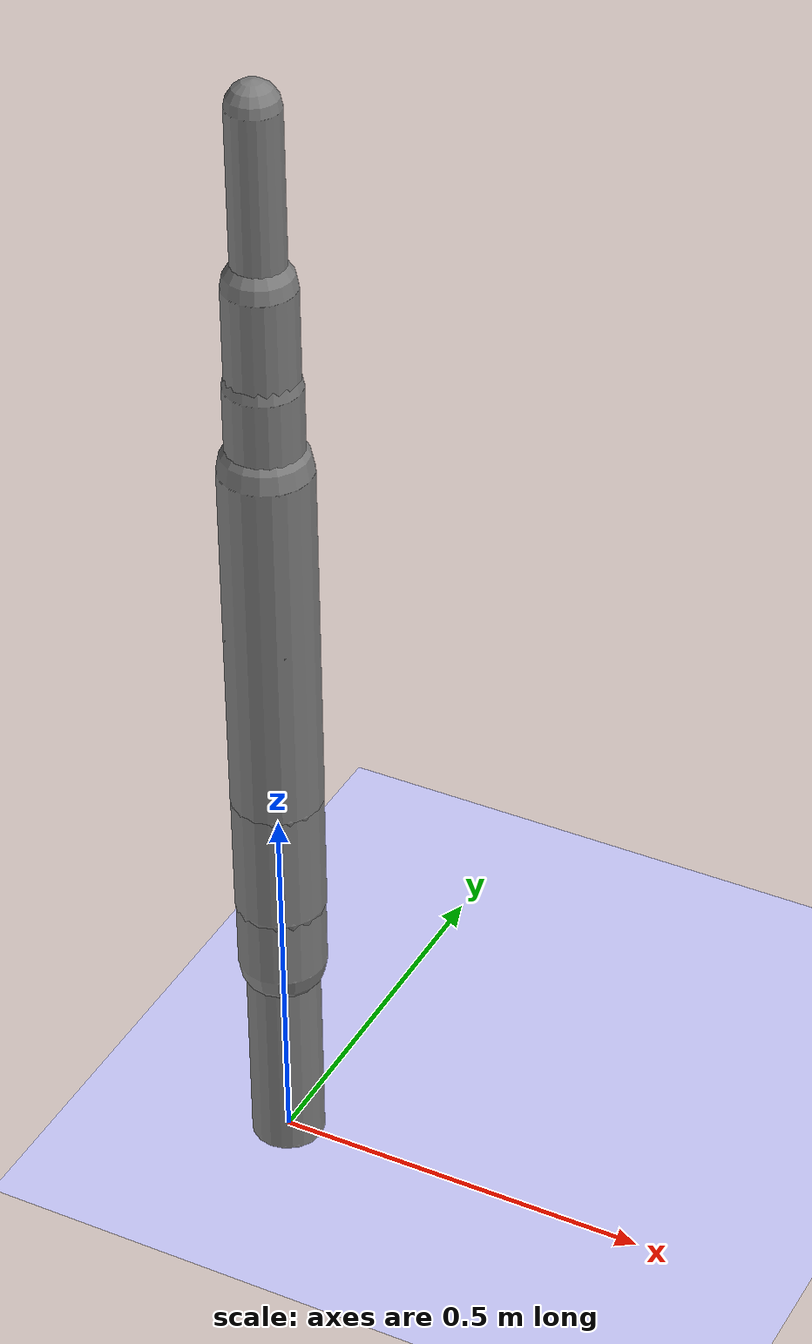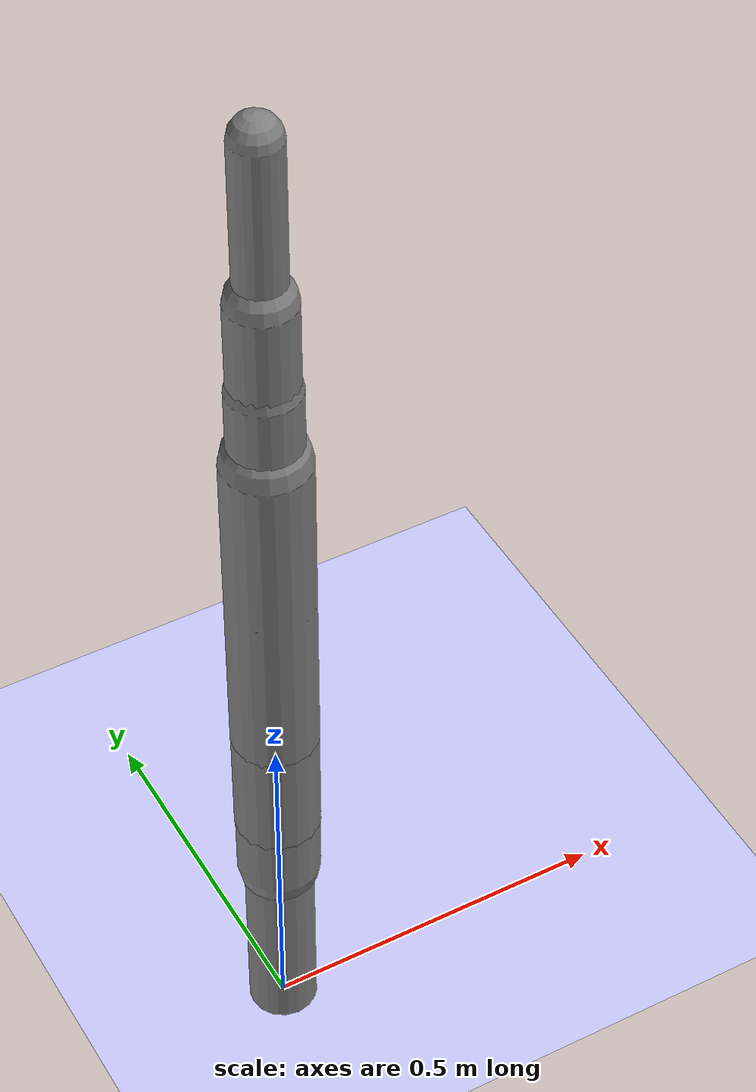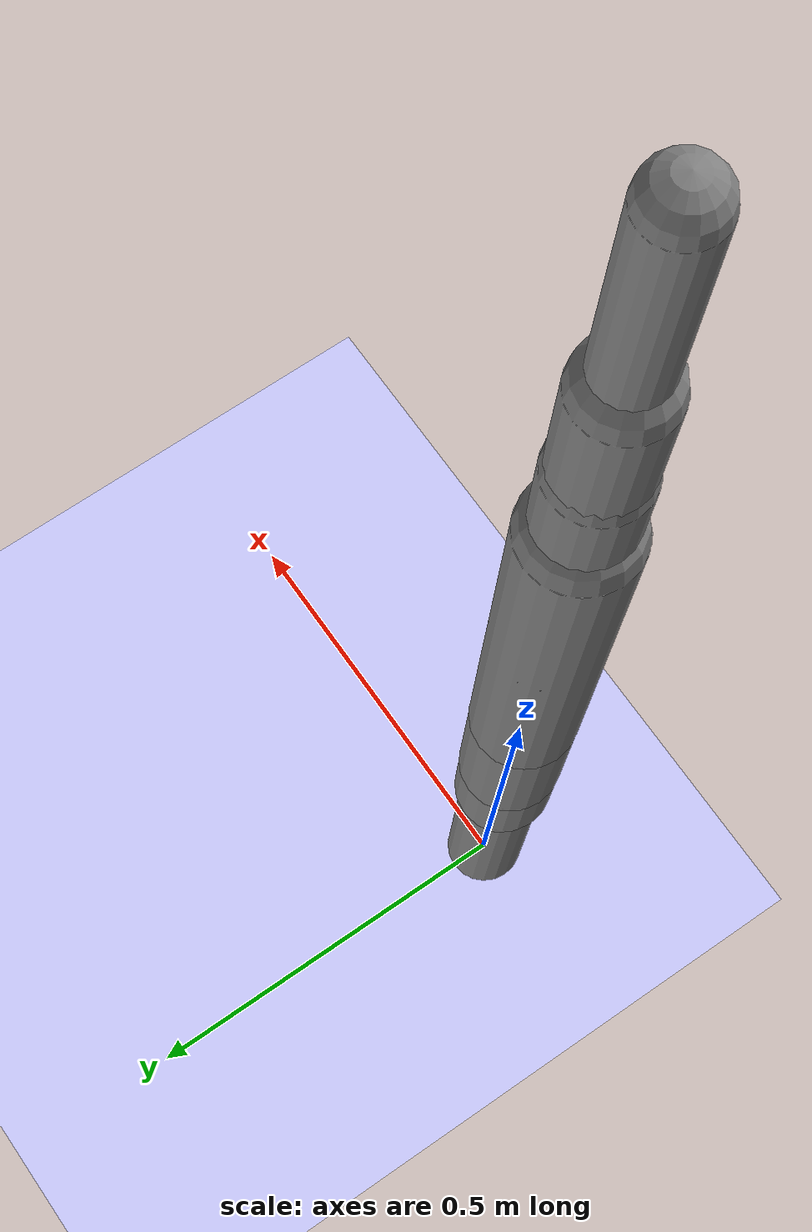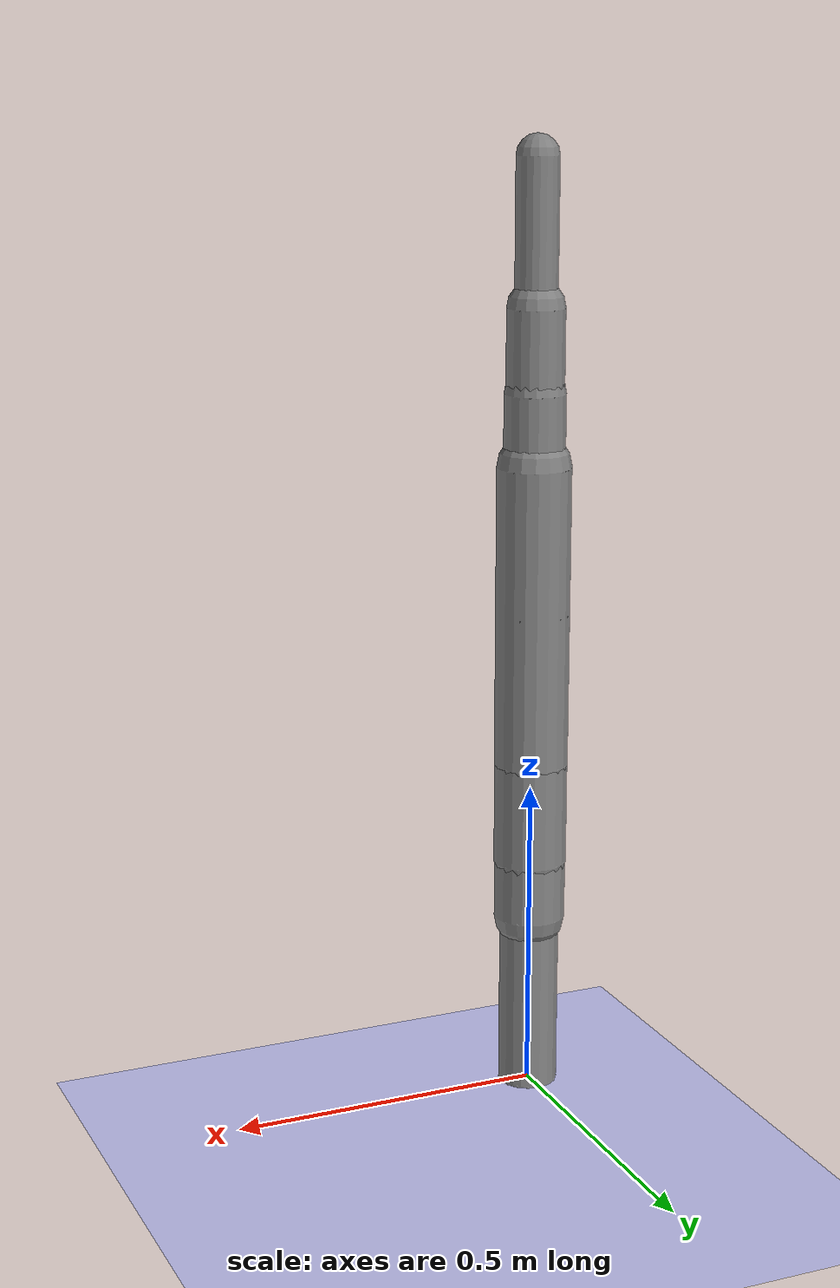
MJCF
<?xml version='1.0' encoding='UTF-8'?>
<mujoco model="robot_model">
  <worldbody>
    <light name="light" pos="0 -3 10" dir="0 0.5 -1" diffuse=".8 .8 .8" specular="0.1 0.1 0.1"/>
    <geom name="floor" type="plane" size="10.0 10.0 0.1" pos="0 0 0" rgba="0.8 0.8 1 1" contype="2" conaffinity="1"/>
    <body name="limb0" pos="0 0 0">
      <geom type="capsule" fromto="0 0 0 0 0 0.39686846697954614" size="0.04760109823295598" density="667.4752007294236" contype="1" conaffinity="2"/>
      <site type="sphere" size="0.01" name="limb0_site0" pos="0 0 0.3791733236739419"/>
      <site type="sphere" size="0.01" name="limb0_site1" pos="0 0 0.28550762675882974"/>
      <freejoint name="limb0_root"/>
      <body name="limb1" pos="0 0 0.3791733236739419">
        <geom type="capsule" fromto="0 0 0 0 0 0.40845966504384795" size="0.058092403829812705" density="1189.9842333916856" contype="1" conaffinity="2"/>
        <site type="sphere" size="0.01" name="limb1_site0" pos="0 0 0.3831327430558419"/>
        <site type="sphere" size="0.01" name="limb1_site1" pos="0 0 0.16283997418838086"/>
        <body name="limb2" pos="0 0 0.3831327430558419">
          <geom type="capsule" fromto="0 0 0 0 0 0.5" size="0.045329815490319995" density="1017.2531489540214" contype="1" conaffinity="2"/>
          <site type="sphere" size="0.01" name="limb2_site0" pos="0 0 0.4086911084967624"/>
          <site type="sphere" size="0.01" name="limb2_site1" pos="0 0 0.06794215458780323"/>
          <body name="limb3" pos="0 0 0.4086911084967624">
            <geom type="capsule" fromto="0 0 0 0 0 0.31639823365961917" size="0.03332545858901545" density="810.7111401801089" contype="1" conaffinity="2"/>
            <joint name="joint_limb2_limb3_0" type="hinge" axis="1 0 0" range="-39.49060384065946 39.49060384065946" damping="5.0"/>
          </body>
          <body name="limb4" pos="0 0 0.06794215458780323">
            <geom type="capsule" fromto="0 0 0 0 0 0.3022856622679478" size="0.048175815576506256" density="901.0737310055127" contype="1" conaffinity="2"/>
            <joint name="joint_limb2_limb4_0" type="hinge" axis="0 1 0" range="-91.32318965408898 91.32318965408898" damping="5.0"/>
          </body>
          <joint name="joint_limb1_limb2_0" type="hinge" axis="0 1 0" range="-60.504894728636025 60.504894728636025" damping="5.0"/>
        </body>
        <body name="limb5" pos="0 0 0.16283997418838086">
          <geom type="capsule" fromto="0 0 0 0 0 0.4769937876246635" size="0.05853425073235774" density="823.7473855435437" contype="1" conaffinity="2"/>
          <joint name="joint_limb1_limb5_0" type="hinge" axis="0 0 1" range="-66.62569151287565 66.62569151287565" damping="5.0"/>
        </body>
        <joint name="joint_limb0_limb1_0" type="hinge" axis="0 1 0" range="-102.24898965233746 102.24898965233746" damping="5.0"/>
      </body>
      <body name="limb6" pos="0 0 0.28550762675882974">
        <geom type="capsule" fromto="0 0 0 0 0 0.3390209356510857" size="0.056972380129968095" density="679.5462153507075" contype="1" conaffinity="2"/>
        <joint name="joint_limb0_limb6_0" type="hinge" axis="0 1 0" range="-76.9634112741505 76.9634112741505" damping="5.0"/>
      </body>
    </body>
  </worldbody>
  <actuator>
    <position name="position_actuator_joint_limb0_limb1_0" joint="joint_limb0_limb1_0" gear="1.6641496608697004" inheritrange="1" forcerange="-30.652165452900483 30.652165452900483" forcelimited="true" kp="100.0"/>
    <position name="position_actuator_joint_limb1_limb2_0" joint="joint_limb1_limb2_0" gear="1.855224638398584" inheritrange="1" forcerange="-18.401183504925072 18.401183504925072" forcelimited="true" kp="100.0"/>
    <position name="position_actuator_joint_limb2_limb3_0" joint="joint_limb2_limb3_0" gear="1.7381429786599083" inheritrange="1" forcerange="-5.1032112549917885 5.1032112549917885" forcelimited="true" kp="100.0"/>
    <position name="position_actuator_joint_limb2_limb4_0" joint="joint_limb2_limb4_0" gear="1.8896882551835783" inheritrange="1" forcerange="-12.040267435535391 12.040267435535391" forcelimited="true" kp="100.0"/>
    <position name="position_actuator_joint_limb1_limb5_0" joint="joint_limb1_limb5_0" gear="0.9522827843608239" inheritrange="1" forcerange="-24.606956957865886 24.606956957865886" forcelimited="true" kp="100.0"/>
    <position name="position_actuator_joint_limb0_limb6_0" joint="joint_limb0_limb6_0" gear="1.25739722463336" inheritrange="1" forcerange="-14.378019506289444 14.378019506289444" forcelimited="true" kp="100.0"/>
  </actuator>
</mujoco>
